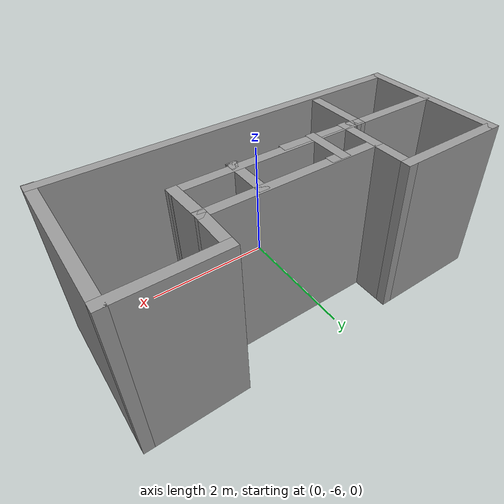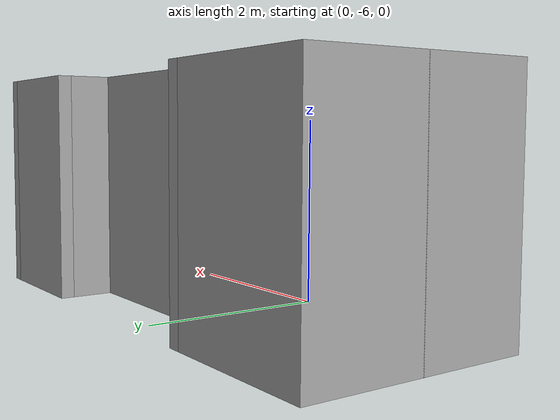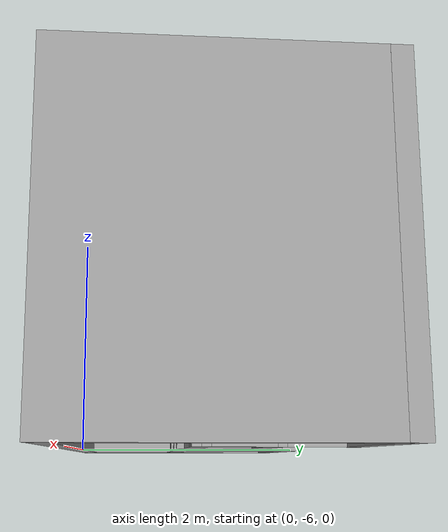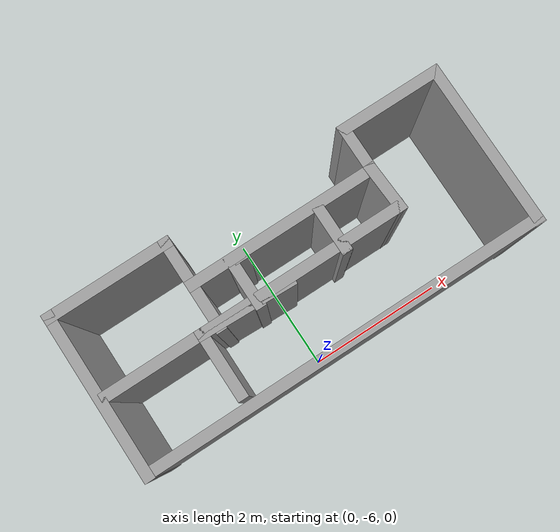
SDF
<?xml version='1.0'?>
<sdf version='1.6'>
  <model name='Untitled'>
    <pose frame=''>0.28 -4.96 0 0 -0 0</pose>
    <link name='Wall_0'>
      <collision name='Wall_0_Collision'>
        <geometry>
          <box>
            <size>2.37 0.15 2.5</size>
          </box>
        </geometry>
        <pose frame=''>0 0 1.25 0 -0 0</pose>
      </collision>
      <visual name='Wall_0_Visual'>
        <pose frame=''>0 0 1.25 0 -0 0</pose>
        <geometry>
          <box>
            <size>2.37 0.15 2.5</size>
          </box>
        </geometry>
        <material>
          <script>
            <uri>file://media/materials/scripts/gazebo.material</uri>
            <name>Gazebo/Grey</name>
          </script>
          <ambient>1 1 1 1</ambient>
        </material>
        <meta>
          <layer>0</layer>
        </meta>
      </visual>
      <pose frame=''>-2.8 0 0 0 -0 1.5708</pose>
    </link>
    <link name='Wall_1'>
      <collision name='Wall_1_Collision'>
        <geometry>
          <box>
            <size>2.37 0.15 2.5</size>
          </box>
        </geometry>
        <pose frame=''>0 0 1.25 0 -0 0</pose>
      </collision>
      <visual name='Wall_1_Visual'>
        <pose frame=''>0 0 1.25 0 -0 0</pose>
        <geometry>
          <box>
            <size>2.37 0.15 2.5</size>
          </box>
        </geometry>
        <material>
          <script>
            <uri>file://media/materials/scripts/gazebo.material</uri>
            <name>Gazebo/Grey</name>
          </script>
          <ambient>1 1 1 1</ambient>
        </material>
        <meta>
          <layer>0</layer>
        </meta>
      </visual>
      <pose frame=''>-2.8 0 0 0 0 -1.5708</pose>
    </link>
    <link name='Wall_10'>
      <collision name='Wall_10_Collision'>
        <geometry>
          <box>
            <size>1.5 0.15 2.5</size>
          </box>
        </geometry>
        <pose frame=''>0 0 1.25 0 -0 0</pose>
      </collision>
      <visual name='Wall_10_Visual'>
        <pose frame=''>0 0 1.25 0 -0 0</pose>
        <geometry>
          <box>
            <size>1.5 0.15 2.5</size>
          </box>
        </geometry>
        <material>
          <script>
            <uri>file://media/materials/scripts/gazebo.material</uri>
            <name>Gazebo/Grey</name>
          </script>
          <ambient>1 1 1 1</ambient>
        </material>
        <meta>
          <layer>0</layer>
        </meta>
      </visual>
      <pose frame=''>-2.045 -0.06 0 0 -0 0</pose>
    </link>
    <link name='Wall_11'>
      <collision name='Wall_11_Collision'>
        <geometry>
          <box>
            <size>1 0.15 2.5</size>
          </box>
        </geometry>
        <pose frame=''>0 0 1.25 0 -0 0</pose>
      </collision>
      <visual name='Wall_11_Visual'>
        <pose frame=''>0 0 1.25 0 -0 0</pose>
        <geometry>
          <box>
            <size>1 0.15 2.5</size>
          </box>
        </geometry>
        <material>
          <script>
            <uri>file://media/materials/scripts/gazebo.material</uri>
            <name>Gazebo/Grey</name>
          </script>
          <ambient>1 1 1 1</ambient>
        </material>
        <meta>
          <layer>0</layer>
        </meta>
      </visual>
      <pose frame=''>-1.37 -0.485 0 0 0 -1.5708</pose>
    </link>
    <link name='Wall_13'>
      <collision name='Wall_13_Collision'>
        <geometry>
          <box>
            <size>1.37066 0.15 2.5</size>
          </box>
        </geometry>
        <pose frame=''>0 0 1.25 0 -0 0</pose>
      </collision>
      <visual name='Wall_13_Visual'>
        <pose frame=''>0 0 1.25 0 -0 0</pose>
        <geometry>
          <box>
            <size>1.37066 0.15 2.5</size>
          </box>
        </geometry>
        <material>
          <script>
            <uri>file://media/materials/scripts/gazebo.material</uri>
            <name>Gazebo/Grey</name>
          </script>
          <ambient>1 1 1 1</ambient>
        </material>
        <meta>
          <layer>0</layer>
        </meta>
      </visual>
      <pose frame=''>-0.76 -0.08 0 0 -0 3.10882</pose>
    </link>
    <link name='Wall_14'>
      <collision name='Wall_14_Collision'>
        <geometry>
          <box>
            <size>3 0.15 2.5</size>
          </box>
        </geometry>
        <pose frame=''>0 0 1.25 0 -0 0</pose>
      </collision>
      <visual name='Wall_14_Visual'>
        <pose frame=''>0 0 1.25 0 -0 0</pose>
        <geometry>
          <box>
            <size>3 0.15 2.5</size>
          </box>
        </geometry>
        <material>
          <script>
            <uri>file://media/materials/scripts/gazebo.material</uri>
            <name>Gazebo/Grey</name>
          </script>
          <ambient>1 1 1 1</ambient>
        </material>
        <meta>
          <layer>0</layer>
        </meta>
      </visual>
      <pose frame=''>0.055 -0.06 0 0 -0 0</pose>
    </link>
    <link name='Wall_15'>
      <collision name='Wall_15_Collision'>
        <geometry>
          <box>
            <size>0.720789 0.15 2.5</size>
          </box>
        </geometry>
        <pose frame=''>0 0 1.25 0 -0 0</pose>
      </collision>
      <visual name='Wall_15_Visual'>
        <pose frame=''>0 0 1.25 0 -0 0</pose>
        <geometry>
          <box>
            <size>0.720789 0.15 2.5</size>
          </box>
        </geometry>
        <material>
          <script>
            <uri>file://media/materials/scripts/gazebo.material</uri>
            <name>Gazebo/Grey</name>
          </script>
          <ambient>1 1 1 1</ambient>
        </material>
        <meta>
          <layer>0</layer>
        </meta>
      </visual>
      <pose frame=''>1.465 0.225 0 0 -0 1.62338</pose>
    </link>
    <link name='Wall_18'>
      <collision name='Wall_18_Collision'>
        <geometry>
          <box>
            <size>0.16 0.15 2.5</size>
          </box>
        </geometry>
        <pose frame=''>0 0 1.25 0 -0 0</pose>
      </collision>
      <visual name='Wall_18_Visual'>
        <pose frame=''>0 0 1.25 0 -0 0</pose>
        <geometry>
          <box>
            <size>0.16 0.15 2.5</size>
          </box>
        </geometry>
        <material>
          <script>
            <uri>file://media/materials/scripts/gazebo.material</uri>
            <name>Gazebo/Grey</name>
          </script>
          <ambient>0 0 0 0</ambient>
        </material>
        <meta>
          <layer>0</layer>
        </meta>
      </visual>
      <pose frame=''>-1.365 -0.06 0 0 -0 0</pose>
    </link>
    <link name='Wall_19'>
      <collision name='Wall_19_Collision'>
        <geometry>
          <box>
            <size>0.75 0.15 2.5</size>
          </box>
        </geometry>
        <pose frame=''>0 0 1.25 0 -0 0</pose>
      </collision>
      <visual name='Wall_19_Visual'>
        <pose frame=''>0 0 1.25 0 -0 0</pose>
        <geometry>
          <box>
            <size>0.75 0.15 2.5</size>
          </box>
        </geometry>
        <material>
          <script>
            <uri>file://media/materials/scripts/gazebo.material</uri>
            <name>Gazebo/Grey</name>
          </script>
          <ambient>1 1 1 1</ambient>
        </material>
        <meta>
          <layer>0</layer>
        </meta>
      </visual>
      <pose frame=''>-1.15 0.21 0 0 0 -1.5708</pose>
    </link>
    <link name='Wall_2'>
      <collision name='Wall_2_Collision'>
        <geometry>
          <box>
            <size>5.75 0.15 2.5</size>
          </box>
        </geometry>
        <pose frame=''>0 0 1.25 0 -0 0</pose>
      </collision>
      <visual name='Wall_2_Visual'>
        <pose frame=''>0 0 1.25 0 -0 0</pose>
        <geometry>
          <box>
            <size>5.75 0.15 2.5</size>
          </box>
        </geometry>
        <material>
          <script>
            <uri>file://media/materials/scripts/gazebo.material</uri>
            <name>Gazebo/Grey</name>
          </script>
          <ambient>1 1 1 1</ambient>
        </material>
        <meta>
          <layer>0</layer>
        </meta>
      </visual>
      <pose frame=''>0 -1.1 0 0 -0 0</pose>
    </link>
    <link name='Wall_21'>
      <collision name='Wall_21_Collision'>
        <geometry>
          <box>
            <size>0.3 0.15 2.5</size>
          </box>
        </geometry>
        <pose frame=''>0 0 1.25 0 -0 0</pose>
      </collision>
      <visual name='Wall_21_Visual'>
        <pose frame=''>0 0 1.25 0 -0 0</pose>
        <geometry>
          <box>
            <size>0.3 0.15 2.5</size>
          </box>
        </geometry>
        <material>
          <script>
            <uri>file://media/materials/scripts/gazebo.material</uri>
            <name>Gazebo/Grey</name>
          </script>
          <ambient>1 1 1 1</ambient>
        </material>
        <meta>
          <layer>0</layer>
        </meta>
      </visual>
      <pose frame=''>-0.525 0.49 0 0 -0 3.14159</pose>
    </link>
    <link name='Wall_22'>
      <collision name='Wall_22_Collision'>
        <geometry>
          <box>
            <size>0.75 0.15 2.5</size>
          </box>
        </geometry>
        <pose frame=''>0 0 1.25 0 -0 0</pose>
      </collision>
      <visual name='Wall_22_Visual'>
        <pose frame=''>0 0 1.25 0 -0 0</pose>
        <geometry>
          <box>
            <size>0.75 0.15 2.5</size>
          </box>
        </geometry>
        <material>
          <script>
            <uri>file://media/materials/scripts/gazebo.material</uri>
            <name>Gazebo/Grey</name>
          </script>
          <ambient>1 1 1 1</ambient>
        </material>
        <meta>
          <layer>0</layer>
        </meta>
      </visual>
      <pose frame=''>-0.6 0.19 0 0 0 -1.5708</pose>
    </link>
    <link name='Wall_24'>
      <collision name='Wall_24_Collision'>
        <geometry>
          <box>
            <size>0.75 0.15 2.5</size>
          </box>
        </geometry>
        <pose frame=''>0 0 1.25 0 -0 0</pose>
      </collision>
      <visual name='Wall_24_Visual'>
        <pose frame=''>0 0 1.25 0 -0 0</pose>
        <geometry>
          <box>
            <size>0.75 0.15 2.5</size>
          </box>
        </geometry>
        <material>
          <script>
            <uri>file://media/materials/scripts/gazebo.material</uri>
            <name>Gazebo/Grey</name>
          </script>
          <ambient>1 1 1 1</ambient>
        </material>
        <meta>
          <layer>0</layer>
        </meta>
      </visual>
      <pose frame=''>0.64 0.18 0 0 0 -1.5708</pose>
    </link>
    <link name='Wall_25'>
      <collision name='Wall_25_Collision'>
        <geometry>
          <box>
            <size>0.15 0.15 2.5</size>
          </box>
        </geometry>
        <pose frame=''>0 0 1.25 0 -0 0</pose>
      </collision>
      <visual name='Wall_25_Visual'>
        <pose frame=''>0 0 1.25 0 -0 0</pose>
        <geometry>
          <box>
            <size>0.15 0.15 2.5</size>
          </box>
        </geometry>
        <material>
          <script>
            <uri>file://media/materials/scripts/gazebo.material</uri>
            <name>Gazebo/Grey</name>
          </script>
          <ambient>1 1 1 1</ambient>
        </material>
        <meta>
          <layer>0</layer>
        </meta>
      </visual>
      <pose frame=''>0.64 -0.12 0 0 -0 0</pose>
    </link>
    <link name='Wall_26'>
      <collision name='Wall_26_Collision'>
        <geometry>
          <box>
            <size>0.15 0.15 2.5</size>
          </box>
        </geometry>
        <pose frame=''>0 0 1.25 0 -0 0</pose>
      </collision>
      <visual name='Wall_26_Visual'>
        <pose frame=''>0 0 1.25 0 -0 0</pose>
        <geometry>
          <box>
            <size>0.15 0.15 2.5</size>
          </box>
        </geometry>
        <material>
          <script>
            <uri>file://media/materials/scripts/gazebo.material</uri>
            <name>Gazebo/Grey</name>
          </script>
          <ambient>1 1 1 1</ambient>
        </material>
        <meta>
          <layer>0</layer>
        </meta>
      </visual>
      <pose frame=''>0.64 -0.12 0 0 -0 0</pose>
    </link>
    <link name='Wall_3'>
      <collision name='Wall_3_Collision'>
        <geometry>
          <box>
            <size>2.37 0.15 2.5</size>
          </box>
        </geometry>
        <pose frame=''>0 0 1.25 0 -0 0</pose>
      </collision>
      <visual name='Wall_3_Visual'>
        <pose frame=''>0 0 1.25 0 -0 0</pose>
        <geometry>
          <box>
            <size>2.37 0.15 2.5</size>
          </box>
        </geometry>
        <material>
          <script>
            <uri>file://media/materials/scripts/gazebo.material</uri>
            <name>Gazebo/Grey</name>
          </script>
          <ambient>1 1 1 1</ambient>
        </material>
        <meta>
          <layer>0</layer>
        </meta>
      </visual>
      <pose frame=''>2.8 0 0 0 -0 1.5708</pose>
    </link>
    <link name='Wall_4'>
      <collision name='Wall_4_Collision'>
        <geometry>
          <box>
            <size>1.5 0.15 2.5</size>
          </box>
        </geometry>
        <pose frame=''>0 0 1.25 0 -0 0</pose>
      </collision>
      <visual name='Wall_4_Visual'>
        <pose frame=''>0 0 1.25 0 -0 0</pose>
        <geometry>
          <box>
            <size>1.5 0.15 2.5</size>
          </box>
        </geometry>
        <material>
          <script>
            <uri>file://media/materials/scripts/gazebo.material</uri>
            <name>Gazebo/Grey</name>
          </script>
          <ambient>1 1 1 1</ambient>
        </material>
        <meta>
          <layer>0</layer>
        </meta>
      </visual>
      <pose frame=''>2.125 1.11 0 0 -0 3.14159</pose>
    </link>
    <link name='Wall_5'>
      <collision name='Wall_5_Collision'>
        <geometry>
          <box>
            <size>0.75 0.15 2.5</size>
          </box>
        </geometry>
        <pose frame=''>0 0 1.25 0 -0 0</pose>
      </collision>
      <visual name='Wall_5_Visual'>
        <pose frame=''>0 0 1.25 0 -0 0</pose>
        <geometry>
          <box>
            <size>0.75 0.15 2.5</size>
          </box>
        </geometry>
        <material>
          <script>
            <uri>file://media/materials/scripts/gazebo.material</uri>
            <name>Gazebo/Grey</name>
          </script>
          <ambient>1 1 1 1</ambient>
        </material>
        <meta>
          <layer>0</layer>
        </meta>
      </visual>
      <pose frame=''>1.45 0.81 0 0 0 -1.5708</pose>
    </link>
    <link name='Wall_6'>
      <collision name='Wall_6_Collision'>
        <geometry>
          <box>
            <size>2.75 0.15 2.5</size>
          </box>
        </geometry>
        <pose frame=''>0 0 1.25 0 -0 0</pose>
      </collision>
      <visual name='Wall_6_Visual'>
        <pose frame=''>0 0 1.25 0 -0 0</pose>
        <geometry>
          <box>
            <size>2.75 0.15 2.5</size>
          </box>
        </geometry>
        <material>
          <script>
            <uri>file://media/materials/scripts/gazebo.material</uri>
            <name>Gazebo/Grey</name>
          </script>
          <ambient>1 1 1 1</ambient>
        </material>
        <meta>
          <layer>0</layer>
        </meta>
      </visual>
      <pose frame=''>0.15 0.51 0 0 -0 3.14159</pose>
    </link>
    <link name='Wall_7'>
      <collision name='Wall_7_Collision'>
        <geometry>
          <box>
            <size>0.75 0.15 2.5</size>
          </box>
        </geometry>
        <pose frame=''>0 0 1.25 0 -0 0</pose>
      </collision>
      <visual name='Wall_7_Visual'>
        <pose frame=''>0 0 1.25 0 -0 0</pose>
        <geometry>
          <box>
            <size>0.75 0.15 2.5</size>
          </box>
        </geometry>
        <material>
          <script>
            <uri>file://media/materials/scripts/gazebo.material</uri>
            <name>Gazebo/Grey</name>
          </script>
          <ambient>1 1 1 1</ambient>
        </material>
        <meta>
          <layer>0</layer>
        </meta>
      </visual>
      <pose frame=''>-1.15 0.81 0 0 -0 1.5708</pose>
    </link>
    <link name='Wall_8'>
      <collision name='Wall_8_Collision'>
        <geometry>
          <box>
            <size>1.8 0.15 2.5</size>
          </box>
        </geometry>
        <pose frame=''>0 0 1.25 0 -0 0</pose>
      </collision>
      <visual name='Wall_8_Visual'>
        <pose frame=''>0 0 1.25 0 -0 0</pose>
        <geometry>
          <box>
            <size>1.8 0.15 2.5</size>
          </box>
        </geometry>
        <material>
          <script>
            <uri>file://media/materials/scripts/gazebo.material</uri>
            <name>Gazebo/Grey</name>
          </script>
          <ambient>1 1 1 1</ambient>
        </material>
        <meta>
          <layer>0</layer>
        </meta>
      </visual>
      <pose frame=''>-1.975 1.11 0 0 -0 3.14159</pose>
    </link>
    <static>1</static>
  </model>
</sdf>
